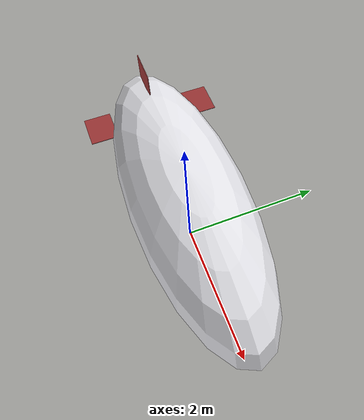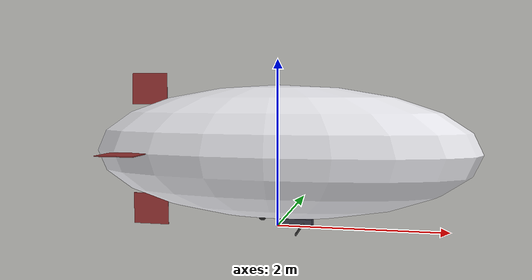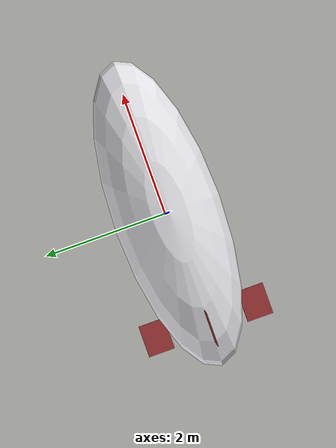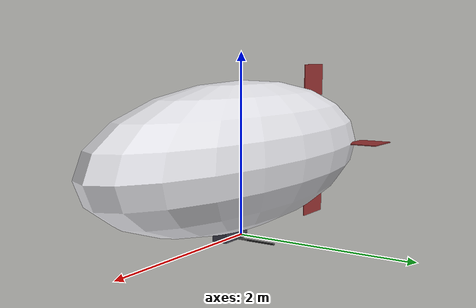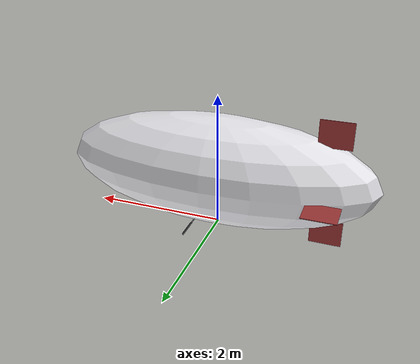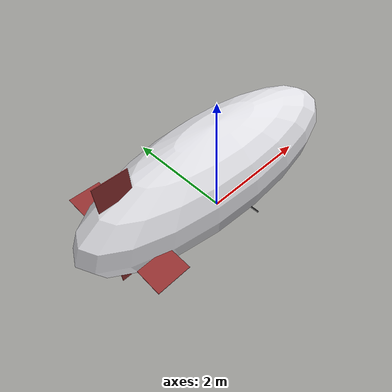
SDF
<?xml version="1.0" encoding="UTF-8"?>
<sdf version="1.10">
  <model name="cloudship_fin">
    <include merge="true">
      <uri>model://cloudship</uri>
    </include>
    <plugin filename="gz-sim-lift-drag-system" name="gz::sim::systems::LiftDrag">
      <!-- fin_top -->
      <link_name>base_link</link_name>
      <air_density>1.225</air_density>
      <cp>-1.53125 0 1.6570</cp>
      <forward>1 0 0</forward>
      <upward>0 1 0</upward>
      <area>0.18135</area>
      <a0>0</a0>
      <cla>7.254</cla>
      <cda>1.94</cda>
      <cma>0</cma>
      <alpha_stall>0.2822</alpha_stall>
      <cla_stall>-1.5888</cla_stall>
      <cda_stall>0.5064</cda_stall>
      <cma_stall>0</cma_stall>
    </plugin>
    <plugin filename="gz-sim-lift-drag-system" name="gz::sim::systems::LiftDrag">
      <!-- fin_bottom -->
      <link_name>base_link</link_name>
      <air_density>1.225</air_density>
      <cp>-1.53125 0 0.1402</cp>
      <forward>1 0 0</forward>
      <upward>0 1 0</upward>
      <area>0.18135</area>
      <a0>0</a0>
      <cla>7.254</cla>
      <cda>1.94</cda>
      <cma>0</cma>
      <alpha_stall>0.2822</alpha_stall>
      <cla_stall>-1.5888</cla_stall>
      <cda_stall>0.5064</cda_stall>
      <cma_stall>0</cma_stall>
    </plugin>
    <plugin filename="gz-sim-lift-drag-system" name="gz::sim::systems::LiftDrag">
      <!-- fin_port -->
      <link_name>base_link</link_name>
      <air_density>1.225</air_density>
      <cp>-1.53125 0.7584 0.8986</cp>
      <forward>1 0 0</forward>
      <upward>0 0 1</upward>
      <area>0.18135</area>
      <a0>0</a0>
      <cla>7.254</cla>
      <cda>1.94</cda>
      <cma>0</cma>
      <alpha_stall>0.2822</alpha_stall>
      <cla_stall>-1.5888</cla_stall>
      <cda_stall>0.5064</cda_stall>
      <cma_stall>0</cma_stall>
    </plugin>
    <plugin filename="gz-sim-lift-drag-system" name="gz::sim::systems::LiftDrag">
      <!-- fin_starboard -->
      <link_name>base_link</link_name>
      <air_density>1.225</air_density>
      <cp>-1.53125 -0.7584 0.8986</cp>
      <forward>1 0 0</forward>
      <upward>0 0 1</upward>
      <area>0.18135</area>
      <a0>0</a0>
      <cla>7.254</cla>
      <cda>1.94</cda>
      <cma>0</cma>
      <alpha_stall>0.2822</alpha_stall>
      <cla_stall>-1.5888</cla_stall>
      <cda_stall>0.5064</cda_stall>
      <cma_stall>0</cma_stall>
    </plugin>
  </model>
</sdf>

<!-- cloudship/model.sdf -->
<sdf version="1.10">
  <model name="cloudship">
    <self_collide>false</self_collide>
    <static>false</static>
    <link name="base_link">
      <pose>0 0 0 0 0 0</pose>
      <inertial>
        <!-- Hull shell, lifting gas, gondola, payload and four fins, each
             about its own center and summed about theirs. -->
        <pose>0.0155 0 0.4183 0 0 0</pose>
        <mass>7.0148</mass>
        <inertia>
          <ixx>2.3196</ixx>
          <iyy>6.8533</iyy>
          <izz>5.6703</izz>
          <ixy>0</ixy>
          <ixz>0.3598</ixz>
          <iyz>0</iyz>
        </inertia>
      </inertial>
      <collision name="hull_collision">
        <pose>0 0 0.8986 0 0 0</pose>
        <geometry>
          <ellipsoid>
            <radii>2.30752 0.78554 0.78554</radii>
          </ellipsoid>
        </geometry>
      </collision>
      <!-- Ground contact; buoyancy volume 0.0068 m^3 -->
      <collision name="gondola_collision">
        <pose>0.22 0 0.05 0 0 0</pose>
        <geometry>
          <box>
            <size>0.4 0.17 0.1</size>
          </box>
        </geometry>
        <surface>
          <contact>
            <ode>
              <min_depth>0.001</min_depth>
              <max_vel>0</max_vel>
            </ode>
          </contact>
          <friction>
            <ode />
          </friction>
        </surface>
      </collision>
      <visual name="hull_visual">
        <pose>0 0 0.8986 0 0 0</pose>
        <geometry>
          <ellipsoid>
            <radii>2.35 0.8 0.8</radii>
          </ellipsoid>
        </geometry>
        <material>
          <ambient>0.9 0.9 0.92 1</ambient>
          <diffuse>0.9 0.9 0.92 1</diffuse>
          <specular>0.3 0.3 0.3 1</specular>
        </material>
      </visual>
      <visual name="gondola_visual">
        <pose>0.22 0 0.05 0 0 0</pose>
        <geometry>
          <box>
            <size>0.4 0.17 0.1</size>
          </box>
        </geometry>
        <material>
          <ambient>0.25 0.25 0.3 1</ambient>
          <diffuse>0.25 0.25 0.3 1</diffuse>
        </material>
      </visual>
      <visual name="payload_visual">
        <pose degrees="true">-0.18 0 0.1146 90 0 0</pose>
        <geometry>
          <cylinder>
            <radius>0.05</radius>
            <length>0.12</length>
          </cylinder>
        </geometry>
        <material>
          <ambient>0.15 0.15 0.15 1</ambient>
          <diffuse>0.15 0.15 0.15 1</diffuse>
        </material>
      </visual>
      <!-- Cruciform tail, visual only: no collision and no lift-drag, so it
           adds no weathercock stiffness, exactly as airship_base's does -->
      <visual name="fin_port_visual">
        <pose>-1.6475 0.7584 0.8986 0 0 0</pose>
        <geometry>
          <box>
            <size>0.465 0.39 0.01</size>
          </box>
        </geometry>
        <material>
          <ambient>0.6 0.2 0.2 1</ambient>
          <diffuse>0.6 0.2 0.2 1</diffuse>
        </material>
      </visual>
      <visual name="fin_starboard_visual">
        <pose>-1.6475 -0.7584 0.8986 0 0 0</pose>
        <geometry>
          <box>
            <size>0.465 0.39 0.01</size>
          </box>
        </geometry>
        <material>
          <ambient>0.6 0.2 0.2 1</ambient>
          <diffuse>0.6 0.2 0.2 1</diffuse>
        </material>
      </visual>
      <visual name="fin_top_visual">
        <pose>-1.6475 0 1.6570 0 0 0</pose>
        <geometry>
          <box>
            <size>0.465 0.01 0.39</size>
          </box>
        </geometry>
        <material>
          <ambient>0.6 0.2 0.2 1</ambient>
          <diffuse>0.6 0.2 0.2 1</diffuse>
        </material>
      </visual>
      <visual name="fin_bottom_visual">
        <pose>-1.6475 0 0.1402 0 0 0</pose>
        <geometry>
          <box>
            <size>0.465 0.01 0.39</size>
          </box>
        </geometry>
        <material>
          <ambient>0.6 0.2 0.2 1</ambient>
          <diffuse>0.6 0.2 0.2 1</diffuse>
        </material>
      </visual>
      <sensor name="air_pressure_sensor" type="air_pressure">
        <gz_frame_id>base_link</gz_frame_id>
        <always_on>1</always_on>
        <update_rate>50</update_rate>
        <air_pressure>
          <!-- Noise modeled after BMP390 -->
          <pressure>
            <noise type="gaussian">
              <mean>0</mean>
              <stddev>3</stddev>
            </noise>
          </pressure>
        </air_pressure>
      </sensor>
      <sensor name="magnetometer_sensor" type="magnetometer">
        <gz_frame_id>base_link</gz_frame_id>
        <always_on>1</always_on>
        <update_rate>100</update_rate>
        <magnetometer>
          <!-- 3mgauss RMS, modeled after IIS2MDC: noise is in tesla but the
               sensor reports gauss -->
          <x>
            <noise type="gaussian">
              <stddev>0.0001</stddev>
            </noise>
          </x>
          <y>
            <noise type="gaussian">
              <stddev>0.0001</stddev>
            </noise>
          </y>
          <z>
            <noise type="gaussian">
              <stddev>0.0001</stddev>
            </noise>
          </z>
        </magnetometer>
      </sensor>
      <sensor name="imu_sensor" type="imu">
        <gz_frame_id>base_link</gz_frame_id>
        <always_on>1</always_on>
        <update_rate>250</update_rate>
        <imu>
          <angular_velocity>
            <!-- Noise modeled after IIM42653, 0.05 deg/s in rad/s -->
            <x>
              <noise type="gaussian">
                <mean>0.0</mean>
                <stddev>0.0008726646</stddev>
              </noise>
            </x>
            <y>
              <noise type="gaussian">
                <mean>0.0</mean>
                <stddev>0.0008726646</stddev>
              </noise>
            </y>
            <z>
              <noise type="gaussian">
                <mean>0.0</mean>
                <stddev>0.0008726646</stddev>
              </noise>
            </z>
          </angular_velocity>
          <linear_acceleration>
            <!-- Noise modeled after IIM42653, 0.65/0.70 mg-rms in m/s^2 -->
            <x>
              <noise type="gaussian">
                <mean>0.0</mean>
                <stddev>0.00637</stddev>
              </noise>
            </x>
            <y>
              <noise type="gaussian">
                <mean>0.0</mean>
                <stddev>0.00637</stddev>
              </noise>
            </y>
            <z>
              <noise type="gaussian">
                <mean>0.0</mean>
                <stddev>0.00686</stddev>
              </noise>
            </z>
          </linear_acceleration>
        </imu>
      </sensor>
      <sensor name="navsat_sensor" type="navsat">
        <gz_frame_id>base_link</gz_frame_id>
        <always_on>1</always_on>
        <update_rate>30</update_rate>
      </sensor>
    </link>
    <link name="thruster_rod">
      <pose>0.32 0 0.05 0 0 0</pose>
      <inertial>
        <mass>0.2</mass>
        <inertia>
          <ixx>0.0135</ixx>
          <iyy>0.0005</iyy>
          <izz>0.0135</izz>
        </inertia>
      </inertial>
      <visual name="thruster_rod_visual">
        <pose degrees="true">0 0 0 90 0 0</pose>
        <geometry>
          <cylinder>
            <radius>0.01</radius>
            <length>0.9</length>
          </cylinder>
        </geometry>
        <material>
          <ambient>0.3 0.3 0.3 1</ambient>
          <diffuse>0.3 0.3 0.3 1</diffuse>
        </material>
      </visual>
    </link>
    <joint name="tilt_joint" type="revolute">
      <parent>base_link</parent>
      <child>thruster_rod</child>
      <axis>
        <xyz>0 -1 0</xyz>
        <limit>
          <lower>-3.141593</lower>
          <upper>3.141593</upper>
        </limit>
        <dynamics>
          <damping>0.01</damping>
        </dynamics>
      </axis>
    </joint>
    <link name="prop_starboard">
      <pose degrees="true">0.32 -0.45 0.05 0 90 0</pose>
      <inertial>
        <mass>0.04</mass>
        <inertia>
          <ixx>0.0003</ixx>
          <iyy>0.0003</iyy>
          <izz>0.0005</izz>
        </inertia>
      </inertial>
      <visual name="prop_starboard_visual">
        <geometry>
          <box>
            <size>0.02 0.3302 0.02</size>
          </box>
        </geometry>
        <material>
          <ambient>0.1 0.1 0.1 1</ambient>
          <diffuse>0.1 0.1 0.1 1</diffuse>
        </material>
      </visual>
    </link>
    <joint name="prop_starboard_joint" type="revolute">
      <parent>thruster_rod</parent>
      <child>prop_starboard</child>
      <axis>
        <xyz>0 0 1</xyz>
        <limit>
          <lower>-1e+16</lower>
          <upper>1e+16</upper>
        </limit>
        <dynamics>
          <spring_reference>0</spring_reference>
          <spring_stiffness>0</spring_stiffness>
        </dynamics>
      </axis>
    </joint>
    <link name="prop_port">
      <pose degrees="true">0.32 0.45 0.05 0 90 0</pose>
      <inertial>
        <mass>0.04</mass>
        <inertia>
          <ixx>0.0003</ixx>
          <iyy>0.0003</iyy>
          <izz>0.0005</izz>
        </inertia>
      </inertial>
      <visual name="prop_port_visual">
        <geometry>
          <box>
            <size>0.02 0.3302 0.02</size>
          </box>
        </geometry>
        <material>
          <ambient>0.1 0.1 0.1 1</ambient>
          <diffuse>0.1 0.1 0.1 1</diffuse>
        </material>
      </visual>
    </link>
    <joint name="prop_port_joint" type="revolute">
      <parent>thruster_rod</parent>
      <child>prop_port</child>
      <axis>
        <xyz>0 0 1</xyz>
        <limit>
          <lower>-1e+16</lower>
          <upper>1e+16</upper>
        </limit>
        <dynamics>
          <spring_reference>0</spring_reference>
          <spring_stiffness>0</spring_stiffness>
        </dynamics>
      </axis>
    </joint>
    <link name="prop_tail">
      <pose degrees="true">-1.6475 0 0.8986 -90 0 0</pose>
      <inertial>
        <mass>0.02</mass>
        <inertia>
          <ixx>0.00002</ixx>
          <iyy>0.00002</iyy>
          <izz>0.00004</izz>
        </inertia>
      </inertial>
      <visual name="prop_tail_visual">
        <geometry>
          <box>
            <size>0.015 0.127 0.015</size>
          </box>
        </geometry>
        <material>
          <ambient>0.1 0.1 0.1 1</ambient>
          <diffuse>0.1 0.1 0.1 1</diffuse>
        </material>
      </visual>
    </link>
    <joint name="prop_tail_joint" type="revolute">
      <parent>base_link</parent>
      <child>prop_tail</child>
      <axis>
        <xyz>0 0 1</xyz>
        <limit>
          <lower>-1e+16</lower>
          <upper>1e+16</upper>
        </limit>
        <dynamics>
          <spring_reference>0</spring_reference>
          <spring_stiffness>0</spring_stiffness>
        </dynamics>
      </axis>
    </joint>
    <plugin filename="gz-sim-joint-position-controller-system"
      name="gz::sim::systems::JointPositionController">
      <joint_name>tilt_joint</joint_name>
      <sub_topic>servo_0</sub_topic>
      <p_gain>2.0</p_gain>
      <i_gain>0.0</i_gain>
      <d_gain>0.1</d_gain>
    </plugin>
    <plugin filename="gz-sim-multicopter-motor-model-system"
      name="gz::sim::systems::MulticopterMotorModel">
      <jointName>prop_starboard_joint</jointName>
      <linkName>prop_starboard</linkName>
      <turningDirection>ccw</turningDirection>
      <timeConstantUp>0.05</timeConstantUp>
      <timeConstantDown>0.05</timeConstantDown>
      <maxRotVelocity>1500.0</maxRotVelocity>
      <motorConstant>7.0632e-06</motorConstant>
      <momentConstant>0.016</momentConstant>
      <commandSubTopic>command/motor_speed</commandSubTopic>
      <motorNumber>0</motorNumber>
      <rotorDragCoefficient>8.06428e-05</rotorDragCoefficient>
      <rollingMomentCoefficient>1e-06</rollingMomentCoefficient>
      <rotorVelocitySlowdownSim>10</rotorVelocitySlowdownSim>
      <motorType>velocity</motorType>
    </plugin>
    <plugin filename="gz-sim-multicopter-motor-model-system"
      name="gz::sim::systems::MulticopterMotorModel">
      <jointName>prop_port_joint</jointName>
      <linkName>prop_port</linkName>
      <turningDirection>cw</turningDirection>
      <timeConstantUp>0.05</timeConstantUp>
      <timeConstantDown>0.05</timeConstantDown>
      <maxRotVelocity>1500.0</maxRotVelocity>
      <motorConstant>7.0632e-06</motorConstant>
      <momentConstant>0.016</momentConstant>
      <commandSubTopic>command/motor_speed</commandSubTopic>
      <motorNumber>1</motorNumber>
      <rotorDragCoefficient>8.06428e-05</rotorDragCoefficient>
      <rollingMomentCoefficient>1e-06</rollingMomentCoefficient>
      <rotorVelocitySlowdownSim>10</rotorVelocitySlowdownSim>
      <motorType>velocity</motorType>
    </plugin>
    <plugin filename="libGenericMotorModelPlugin.so"
      name="gz::sim::systems::GenericMotorModel">
      <jointName>prop_tail_joint</jointName>
      <linkName>prop_tail</linkName>
      <turningDirection>ccw</turningDirection>
      <commandSubTopic>command/motor_speed</commandSubTopic>
      <actuator_number>2</actuator_number>
      <rotorVelocitySlowdownSim>0.025</rotorVelocitySlowdownSim>
      <motorType>force_polynomial</motorType>
      <controlMethod>duty_cycle</controlMethod>
      <minCommand>0.0</minCommand>
      <minDutyCycle>1100</minDutyCycle>
      <maxDutyCycle>1900</maxDutyCycle>
      <bidirectionalMotor>1</bidirectionalMotor>
      <positiveThrustPolynomial>[0.0, 0.0, 2.3544, 0.0]</positiveThrustPolynomial>
      <negativeThrustPolynomial>[0.0, 0.0, 2.3544, 0.0]</negativeThrustPolynomial>
    </plugin>
    <plugin filename="gz-sim-hydrodynamics-system" name="gz::sim::systems::Hydrodynamics">
      <link_name>base_link</link_name>
      <!-- Quadratic drag [N/(m/s)^2] -->
      <xUabsU>-0.0946</xUabsU>
      <yVabsV>-3.2738</yVabsV>
      <zWabsW>-3.2738</zWabsW>
      <!-- Rotational damping [N m/(rad/s)^2], with the linear roll term the
           very lightly damped roll mode needs [N m/(rad/s)] -->
      <kP>-0.1696</kP>
      <kPabsP>-0.7631</kPabsP>
      <mQabsQ>-5.0873</mQabsQ>
      <nRabsR>-5.0873</nRabsR>
      <xQabsU>-0.1700</xQabsU>
      <yPabsV>5.8837</yPabsV>
      <mUabsU>-0.0850</mUabsU>
      <mQabsU>-0.1528</mQabsU>
      <kVabsV>2.9418</kVabsV>
      <kPabsV>-5.2871</kPabsV>
      <disable_added_mass>true</disable_added_mass>
    </plugin>
  </model>
</sdf>
